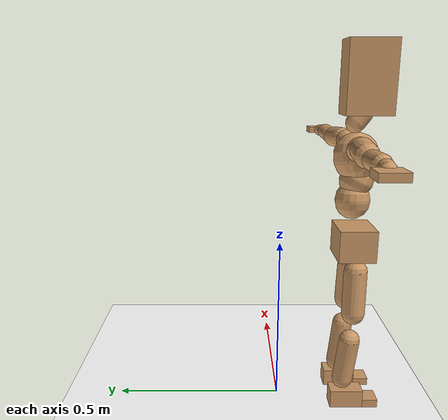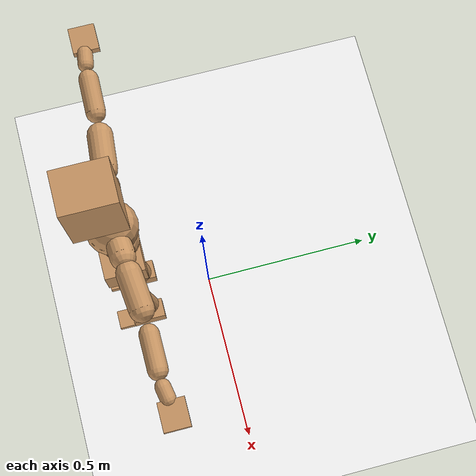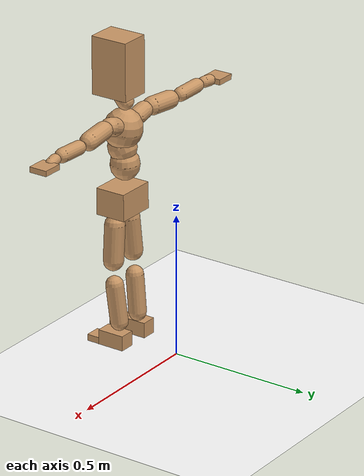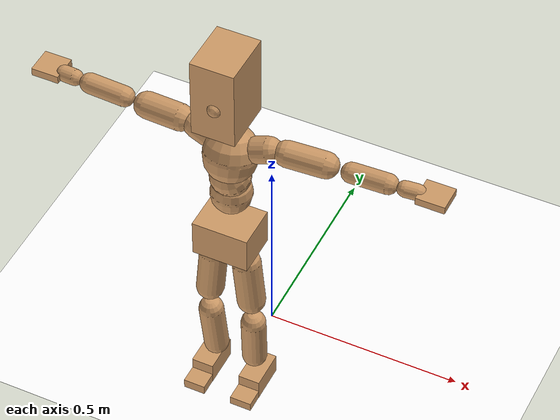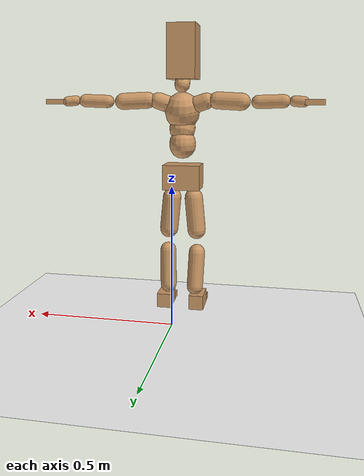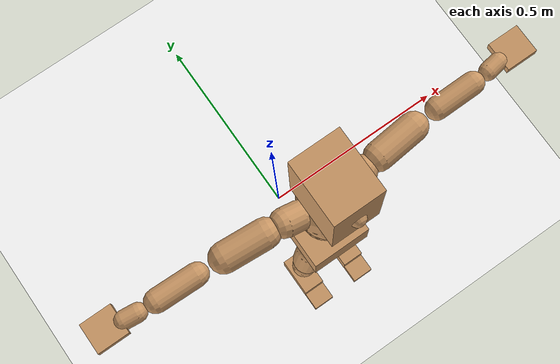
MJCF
<mujoco model="humanoid">
  <option integrator="implicitfast" />

  <visual>
    <global offwidth="1280" offheight="960" />
    <headlight active="1" ambient="0.34 0.34 0.34" diffuse="0.5 0.5 0.5" />
  </visual>

  <default>
    <joint damping="2" stiffness="2" armature="0.01" limited="true" solimplimit="0 .99 .01" />
    <geom condim="1" friction="0.7 0.005 0.0001" solimp=".99 .99 .003" solref="0.015 1" margin="0.001" rgba="0.8 0.6 .4 1" />
    <default class="smplcontact">
      <geom condim="3" friction="1. 0.005 0.0001" solref="0.015 1" solimp="0.98 0.98 0.001" priority="1" />
    </default>
    <default class="stiff_medium">
      <joint stiffness="10" />
    </default>
    <default class="stiff_medium_higher">
      <joint stiffness="50" />
    </default>
    <default class="stiff_high">
      <joint stiffness="100" />
    </default>
  </default>

  <asset>
    <texture type="skybox" builtin="gradient" rgb1="0.99 0.99 0.99" rgb2="0.608 0.828 0.892" width="100" />
    <texture builtin="flat" height="1278" mark="cross" markrgb="1 1 1" name="texgeom" random="0.01" rgb1="0.8 0.6 0.4" rgb2="0.8 0.6 0.4" type="cube" width="127" />
    <texture name="texplane" type="2d" builtin="checker" markrgb="1 1 1" rgb1="0.756 0.772 0.76" rgb2="0.6 0.6 0.6" width="100" height="100" />
    <material name="MatPlane" reflectance="0.5" texture="texplane" texrepeat="1 1" texuniform="true" />
    <material name="geom" texture="texgeom" texuniform="true" />
  </asset>

  <worldbody>
    <light name="tracking_light" pos="0 0 7" dir="0 0 -1" directional="true" cutoff="100" exponent="1" diffuse="1 1 1" specular="0.1 0.1 0.1" mode="trackcom" />
    <camera name="back" pos="0 3 2.4" xyaxes="-1 0 0 0 -1 2" mode="trackcom" />
    <camera name="side" pos="-3 0 2.4" xyaxes="0 -1 0 1 0 2" mode="trackcom" />
    <camera name="front_side" pos="-2.8 -2.8 0.8" xyaxes="0.5 -0.5 0 0.1 0.1 1" mode="trackcom" />
    <geom condim="3" name="floor" pos="0 0 0" rgba="1 1 1 1" size="100 100 .2" type="plane" material="MatPlane" />
    <body name="Pelvis" pos="-0.0018 -0.2233 0.520282" euler="90 0 0">
      <site name="Pelvis" size="0.01" />
      <freejoint name="Pelvis" />
      <geom type="box" pos="-0.0000 -0.0121 -0.0055" size="0.0698564 0.0471809 0.0542384" quat="1.0000 0.0000 0.0000 0.0000" density="3165.830099" name="Pelvis" />
      <body name="L_Hip" pos="0.0385529 -0.0507012 -0.00377208">
        <joint name="L_Hip_x" type="hinge" pos="0 0 0" axis="1 0 0" stiffness="10" range="-160.0 22.92" class="stiff_medium" damping="15" />
        <joint name="L_Hip_y" type="hinge" pos="0 0 0" axis="0 1 0" stiffness="10" range="-70.0 70.0" class="stiff_medium" damping="10" />
        <joint name="L_Hip_z" type="hinge" pos="0 0 0" axis="0 0 1" stiffness="10" range="-28.65 90.0" class="stiff_medium" damping="10" />
        <geom type="capsule" density="2040.816327" fromto="0.00382755 -0.0416038 -0.000499246 0.0151993 -0.166526 -0.00199698" size="0.0349862" name="L_Hip" />
        <body name="L_Knee" pos="0.0190268 -0.20813 -0.00249623">
          <joint name="L_Knee_x" type="hinge" pos="0 0 0" axis="1 0 0" range="-5.16 171.89" damping="8" />
          <joint name="L_Knee_y" type="hinge" pos="0 0 0" axis="0 1 0" range="-4.58 6.88" damping="8" />
          <joint name="L_Knee_z" type="hinge" pos="0 0 0" axis="0 0 1" range="-6.88 4.58" damping="8" />
          <geom type="capsule" density="1234.567901" fromto="-0.00149774 -0.0441555 -0.00482605 -0.00604642 -0.176622 -0.0194151" size="0.0307765" name="L_Knee" />
          <body name="L_Ankle" pos="-0.00754416 -0.220778 -0.0242412">
            <joint name="L_Ankle_x" type="hinge" pos="0 0 0" axis="1 0 0" range="-45.84 45.84" class="stiff_medium" damping="6" />
            <joint name="L_Ankle_y" type="hinge" pos="0 0 0" axis="0 1 0" range="-74.48 22.92" class="stiff_medium" damping="3" />
            <joint name="L_Ankle_z" type="hinge" pos="0 0 0" axis="0 0 1" range="-4.58 4.58" class="stiff_medium" damping="6" />
            <geom type="box" pos="0.0129249 -0.0132578 0.0134242" size="0.027477 0.0263961 0.048355" quat="1.0000 0.0000 0.0000 0.0000" density="449.071558" name="L_Ankle" class="smplcontact" />
            <body name="L_Toe" pos="0.0146446 -0.0309533 0.0661778">
              <joint name="L_Toe_x" type="hinge" pos="0 0 0" axis="1 0 0" range="-91.67 22.92" />
              <joint name="L_Toe_y" type="hinge" pos="0 0 0" axis="0 1 0" range="-4.58 4.58" />
              <joint name="L_Toe_z" type="hinge" pos="0 0 0" axis="0 0 1" range="-4.58 4.58" />
              <geom type="box" pos="-0.00166415 0.00305095 0.013757" size="0.0271926 0.0113776 0.0282165" quat="1.0000 0.0000 0.0000 0.0000" density="423.206892" name="L_Toe" class="smplcontact" />
            </body>
          </body>
        </body>
      </body>
      <body name="R_Hip" pos="-0.0375544 -0.050202 -0.00238529">
        <joint name="R_Hip_x" type="hinge" pos="0 0 0" axis="1 0 0" stiffness="10" range="-160.0 22.92" class="stiff_medium" damping="15" />
        <joint name="R_Hip_y" type="hinge" pos="0 0 0" axis="0 1 0" stiffness="10" range="-70.0 70.0" class="stiff_medium" damping="10" />
        <joint name="R_Hip_z" type="hinge" pos="0 0 0" axis="0 0 1" stiffness="10" range="-90.0 28.65" class="stiff_medium" damping="10" />
        <geom type="capsule" density="2040.816327" fromto="-0.00427133 -0.0424359 -0.000998492 -0.0169744 -0.169799 -0.0039385" size="0.0344742" name="R_Hip" />
        <body name="R_Knee" pos="-0.0212457 -0.212235 -0.00493699">
          <joint name="R_Knee_x" type="hinge" pos="0 0 0" axis="1 0 0" range="-5.16 171.89" damping="8" />
          <joint name="R_Knee_y" type="hinge" pos="0 0 0" axis="0 1 0" range="-6.88 4.58" damping="8" />
          <joint name="R_Knee_z" type="hinge" pos="0 0 0" axis="0 0 1" range="-4.58 6.88" damping="8" />
          <geom type="capsule" density="1234.567901" fromto="0.0017751 -0.044211 -0.0047151 0.00698945 -0.176789 -0.0187495" size="0.0307765" name="R_Knee" />
          <body name="R_Ankle" pos="0.00876454 -0.221 -0.0234646">
            <joint name="R_Ankle_x" type="hinge" pos="0 0 0" axis="1 0 0" range="-45.84 45.84" class="stiff_medium" damping="6" />
            <joint name="R_Ankle_y" type="hinge" pos="0 0 0" axis="0 1 0" range="-22.92 74.48" class="stiff_medium" damping="3" />
            <joint name="R_Ankle_z" type="hinge" pos="0 0 0" axis="0 0 1" range="-4.58 4.58" class="stiff_medium" damping="6" />
            <geom type="box" pos="-0.01176 -0.00965209 0.0142008" size="0.027477 0.0271926 0.0492083" quat="1.0000 0.0000 0.0000 0.0000" density="434.700981" name="R_Ankle" class="smplcontact" />
            <body name="R_Toe" pos="-0.0140898 -0.0266819 0.0683967">
              <joint name="R_Toe_x" type="hinge" pos="0 0 0" axis="1 0 0" range="-91.67 22.92" />
              <joint name="R_Toe_y" type="hinge" pos="0 0 0" axis="0 1 0" range="-4.58 4.58" />
              <joint name="R_Toe_z" type="hinge" pos="0 0 0" axis="0 0 1" range="-4.58 4.58" />
              <geom type="box" pos="0.00232982 0.00249623 0.0125921" size="0.0272494 0.0122879 0.0280459" quat="1.0000 0.0000 0.0000 0.0000" density="407.384095" name="R_Toe" class="smplcontact" />
            </body>
          </body>
        </body>
      </body>
      <body name="Torso" pos="-0.00159301 0.0694552 -0.0170133">
        <joint name="Torso_x" type="hinge" pos="0 0 0" axis="1 0 0" range="-25.78 57.3" class="stiff_medium" damping="15" />
        <joint name="Torso_y" type="hinge" pos="0 0 0" axis="0 1 0" range="-57.3 57.3" class="stiff_high" damping="20" />
        <joint name="Torso_z" type="hinge" pos="0 0 0" axis="0 0 1" range="-34.38 34.38" class="stiff_high" damping="20" />
        <geom type="capsule" density="2040.816327" fromto="0.00159301 0.038742 0.000318602 0.00191161 0.0473443 0.000382322" size="0.0502522" name="Torso" />
        <body name="Spine" pos="0.00350462 0.08615 0.000700925">
          <joint name="Spine_x" type="hinge" pos="0 0 0" axis="1 0 0" stiffness="10" range="-25.78 57.3" class="stiff_medium" damping="15" />
          <joint name="Spine_y" type="hinge" pos="0 0 0" axis="0 1 0" stiffness="10" range="-57.3 57.3" class="stiff_high" damping="8" />
          <joint name="Spine_z" type="hinge" pos="0 0 0" axis="0 0 1" stiffness="20" range="-34.38 34.38" class="stiff_high" damping="12" />
          <geom type="capsule" density="2040.816327" fromto="0.000446043 0.0151655 0.00726413 0.000509763 0.0185426 0.00892086" size="0.0493373" name="Spine" />
          <body name="Chest" pos="0.000955806 0.0337081 0.016185">
            <joint name="Chest_x" type="hinge" pos="0 0 0" axis="1 0 0" stiffness="10" range="-25.78 57.3" class="stiff_medium" damping="15" />
            <joint name="Chest_y" type="hinge" pos="0 0 0" axis="0 1 0" stiffness="10" range="-57.3 57.3" class="stiff_high" damping="8" />
            <joint name="Chest_z" type="hinge" pos="0 0 0" axis="0 0 1" stiffness="20" range="-34.38 34.38" class="stiff_high" damping="12" />
            <geom type="capsule" density="2040.816327" fromto="-0.000573484 0.0434573 -0.0110236 -0.000637204 0.0530791 -0.0135087" size="0.0654781" name="Chest" />
            <body name="Neck" pos="-0.00178417 0.136298 -0.0273361">
              <joint name="Neck_x" type="hinge" pos="0 0 0" axis="1 0 0" range="-28.65 57.3" class="stiff_medium_higher" damping="10" />
              <joint name="Neck_y" type="hinge" pos="0 0 0" axis="0 1 0" range="-40.11 40.11" class="stiff_medium_higher" damping="10" />
              <joint name="Neck_z" type="hinge" pos="0 0 0" axis="0 0 1" range="-40.11 40.11" class="stiff_medium_higher" damping="10" />
              <geom type="capsule" density="1000" fromto="0.000637204 0.00828365 0.0065632 0.00261254 0.0331346 0.0261891" size="0.0284915" name="Neck" />
              <body name="Head" pos="0.00444036 0.0555045 0.0438059">
                <joint name="Head_x" type="hinge" pos="0 0 0" axis="1 0 0" range="-28.65 57.3" class="stiff_medium_higher" damping="2" />
                <joint name="Head_y" type="hinge" pos="0 0 0" axis="0 1 0" range="-40.11 40.11" class="stiff_medium_higher" damping="2" />
                <joint name="Head_z" type="hinge" pos="0 0 0" axis="0 0 1" range="-40.11 40.11" class="stiff_medium_higher" damping="2" />
                <geom type="box" pos="-0.00358645 0.074803 -0.00990543" size="0.0530686 0.101058 0.0665547" quat="1.0000 0.0000 0.0000 0.0000" density="1018.069894" name="Head" />
                <geom type="capsule" name="nose" size="0.0175144 0.0087572" pos="0 0.0597741 0.0426958" quat="1 0 0 0" mass="0" contype="0" conaffinity="0" />
              </body>
            </body>
            <body name="L_Thorax" pos="0.0462926 0.071495 -0.0200327">
              <joint name="L_Thorax_x" type="hinge" pos="0 0 0" axis="1 0 0" range="-10.89 4.58" class="stiff_medium_higher" damping="20" />
              <joint name="L_Thorax_y" type="hinge" pos="0 0 0" axis="0 1 0" range="-28.65 17.19" class="stiff_medium_higher" damping="20" />
              <joint name="L_Thorax_z" type="hinge" pos="0 0 0" axis="0 0 1" range="-31.51 40.11" class="stiff_medium_higher" damping="20" />
              <geom type="capsule" density="1000" fromto="0.0106919 0.00358356 -0.00105744 0.0427678 0.0143342 -0.00417103" size="0.0313887" name="L_Thorax" />
              <body name="L_Shoulder" pos="0.0534597 0.0179178 -0.00522848">
                <joint name="L_Shoulder_x" type="hinge" pos="0 0 0" axis="1 0 0" range="-97.4 97.4" class="stiff_medium" damping="6" />
                <joint name="L_Shoulder_y" type="hinge" pos="0 0 0" axis="0 1 0" range="-108.86 80.21" class="stiff_medium" damping="6" />
                <joint name="L_Shoulder_z" type="hinge" pos="0 0 0" axis="0 0 1" range="-97.4 85.94" class="stiff_medium" damping="6" />
                <geom type="capsule" density="1000" fromto="0.0304897 -0.00152742 -0.00323108 0.122017 -0.00599219 -0.0129243" size="0.0311477" name="L_Shoulder" />
                <body name="L_Elbow" pos="0.152507 -0.00751961 -0.0161554">
                  <joint name="L_Elbow_x" type="hinge" pos="0 0 0" axis="1 0 0" range="-17.19 4.58" damping="5" />
                  <joint name="L_Elbow_y" type="hinge" pos="0 0 0" axis="0 1 0" range="-180.0 17.19" damping="5" />
                  <joint name="L_Elbow_z" type="hinge" pos="0 0 0" axis="0 0 1" range="-100.84 4.58" damping="5" />
                  <geom type="capsule" density="1000" fromto="0.029256 0.00105744 -0.000117494 0.117141 0.00422978 -0.000528722" size="0.0244" name="L_Elbow" />
                  <body name="L_Wrist" pos="0.146397 0.00528722 -0.000704963">
                    <joint name="L_Wrist_x" type="hinge" pos="0 0 0" axis="1 0 0" range="-180.0 22.92" />
                    <joint name="L_Wrist_y" type="hinge" pos="0 0 0" axis="0 1 0" range="-17.19 17.19" />
                    <joint name="L_Wrist_z" type="hinge" pos="0 0 0" axis="0 0 1" range="-22.92 22.92" />
                    <geom type="capsule" density="1000" fromto="0.00986948 -0.000939951 -0.00176241 0.0394779 -0.00381855 -0.00704963" size="0.0191585" name="L_Wrist" class="smplcontact" />
                    <body name="L_Hand" pos="0.0493474 -0.00481725 -0.00875329">
                      <joint name="L_Hand_x" type="hinge" pos="0 0 0" axis="1 0 0" range="-17.19 17.19" />
                      <joint name="L_Hand_y" type="hinge" pos="0 0 0" axis="0 1 0" range="-51.57 51.57" />
                      <joint name="L_Hand_z" type="hinge" pos="0 0 0" axis="0 0 1" range="-91.67 91.67" />
                      <geom type="box" pos="0.0289622 0.000587469 -0.00340732" size="0.0352445 0.00951902 0.0324129" quat="1.0000 0.0000 0.0000 0.0000" density="400.552564" name="L_Hand" class="smplcontact" />
                    </body>
                  </body>
                </body>
              </body>
            </body>
            <body name="R_Thorax" pos="-0.048055 0.0697913 -0.0226763">
              <joint name="R_Thorax_x" type="hinge" pos="0 0 0" axis="1 0 0" range="-10.89 4.58" class="stiff_medium_higher" damping="20" />
              <joint name="R_Thorax_y" type="hinge" pos="0 0 0" axis="0 1 0" range="-17.19 28.65" class="stiff_medium_higher" damping="20" />
              <joint name="R_Thorax_z" type="hinge" pos="0 0 0" axis="0 0 1" range="-40.11 31.51" class="stiff_medium_higher" damping="20" />
              <geom type="capsule" density="1000" fromto="-0.0112794 0.00381855 -0.00105744 -0.0451176 0.0152742 -0.00428853" size="0.0307862" name="R_Thorax" />
              <body name="R_Shoulder" pos="-0.056397 0.0191515 -0.00534597">
                <joint name="R_Shoulder_x" type="hinge" pos="0 0 0" axis="1 0 0" range="-97.4 97.4" class="stiff_medium" damping="6" />
                <joint name="R_Shoulder_y" type="hinge" pos="0 0 0" axis="0 1 0" range="-80.21 108.86" class="stiff_medium" damping="6" />
                <joint name="R_Shoulder_z" type="hinge" pos="0 0 0" axis="0 0 1" range="-85.94 97.4" class="stiff_medium" damping="6" />
                <geom type="capsule" density="1000" fromto="-0.0297847 -0.00158617 -0.00252612 -0.119256 -0.00628592 -0.0100457" size="0.0319911" name="R_Shoulder" />
                <body name="R_Elbow" pos="-0.149041 -0.00781334 -0.0125718">
                  <joint name="R_Elbow_x" type="hinge" pos="0 0 0" axis="1 0 0" range="-17.19 4.58" damping="5" />
                  <joint name="R_Elbow_y" type="hinge" pos="0 0 0" axis="0 1 0" range="-17.19 180.0" damping="5" />
                  <joint name="R_Elbow_z" type="hinge" pos="0 0 0" axis="0 0 1" range="-4.58 100.84" damping="5" />
                  <geom type="capsule" density="1000" fromto="-0.0300197 0.000939951 -0.000646216 -0.119961 0.00364231 -0.00258486" size="0.0245808" name="R_Elbow" />
                  <body name="R_Wrist" pos="-0.149981 0.00458226 -0.00328983">
                    <joint name="R_Wrist_x" type="hinge" pos="0 0 0" axis="1 0 0" range="-180.0 22.92" />
                    <joint name="R_Wrist_y" type="hinge" pos="0 0 0" axis="0 1 0" range="-17.19 17.19" />
                    <joint name="R_Wrist_z" type="hinge" pos="0 0 0" axis="0 0 1" range="-22.92 22.92" />
                    <geom type="capsule" density="1000" fromto="-0.00992823 -0.000704963 -0.00123369 -0.0397717 -0.0028786 -0.00487599" size="0.0196405" name="R_Wrist" class="smplcontact" />
                    <body name="R_Hand" pos="-0.0496999 -0.00358356 -0.00605093">
                      <joint name="R_Hand_x" type="hinge" pos="0 0 0" axis="1 0 0" range="-17.19 17.19" />
                      <joint name="R_Hand_y" type="hinge" pos="0 0 0" axis="0 1 0" range="-51.57 51.57" />
                      <joint name="R_Hand_z" type="hinge" pos="0 0 0" axis="0 0 1" range="-91.67 91.67" />
                      <geom type="box" pos="-0.0271411 -0.000528722 -0.00464101" size="0.0342805 0.0098805 0.0328948" quat="1.0000 0.0000 0.0000 0.0000" density="403.679611" name="R_Hand" class="smplcontact" />
                    </body>
                  </body>
                </body>
              </body>
            </body>
          </body>
        </body>
      </body>
    </body>
  </worldbody>
  <actuator>
    <general name="L_Hip_x" joint="L_Hip_x" biastype="affine" gainprm="287.33006409732246" biasprm="-215.3247604770444 -180 -2.0" ctrllimited="true" ctrlrange="-1 1" forcerange="-360 360" />
    <general name="L_Hip_y" joint="L_Hip_y" biastype="affine" gainprm="219.9114857512855" biasprm="0.0 -180 -2.0" ctrllimited="true" ctrlrange="-1 1" forcerange="-360 360" />
    <general name="L_Hip_z" joint="L_Hip_z" biastype="affine" gainprm="186.3749841742145" biasprm="96.3683546488669 -180 -2.0" ctrllimited="true" ctrlrange="-1 1" forcerange="-360 360" />
    <general name="L_Knee_x" joint="L_Knee_x" biastype="affine" gainprm="278.10948965903646" biasprm="261.8988715665131 -180 -2.0" ctrllimited="true" ctrlrange="-1 1" forcerange="-360 360" />
    <general name="L_Knee_y" joint="L_Knee_y" biastype="affine" gainprm="18.001325905069514" biasprm="3.612831551628262 -180 -2.0" ctrllimited="true" ctrlrange="-1 1" forcerange="-360 360" />
    <general name="L_Knee_z" joint="L_Knee_z" biastype="affine" gainprm="18.001325905069514" biasprm="-3.612831551628262 -180 -2.0" ctrllimited="true" ctrlrange="-1 1" forcerange="-360 360" />
    <general name="L_Ankle_x" joint="L_Ankle_x" biastype="affine" gainprm="72.00530362027807" biasprm="0.0 -90 -2.0" ctrllimited="true" ctrlrange="-1 1" forcerange="-180 180" />
    <general name="L_Ankle_y" joint="L_Ankle_y" biastype="affine" gainprm="76.49778111491148" biasprm="-40.49512930477244 -90 -2.0" ctrllimited="true" ctrlrange="-1 1" forcerange="-180 180" />
    <general name="L_Ankle_z" joint="L_Ankle_z" biastype="affine" gainprm="7.1942471767206255" biasprm="0.0 -90 -2.0" ctrllimited="true" ctrlrange="-1 1" forcerange="-180 180" />
    <general name="L_Toe_x" joint="L_Toe_x" biastype="affine" gainprm="71.99902043497087" biasprm="-43.19689898685965 -72 -0.8" ctrllimited="true" ctrlrange="-1 1" forcerange="-144 144" />
    <general name="L_Toe_y" joint="L_Toe_y" biastype="affine" gainprm="5.755397741376501" biasprm="0.0 -72 -0.8" ctrllimited="true" ctrlrange="-1 1" forcerange="-144 144" />
    <general name="L_Toe_z" joint="L_Toe_z" biastype="affine" gainprm="5.755397741376501" biasprm="0.0 -72 -0.8" ctrllimited="true" ctrlrange="-1 1" forcerange="-144 144" />
    <general name="R_Hip_x" joint="R_Hip_x" biastype="affine" gainprm="287.33006409732246" biasprm="-215.3247604770444 -180 -2.0" ctrllimited="true" ctrlrange="-1 1" forcerange="-360 360" />
    <general name="R_Hip_y" joint="R_Hip_y" biastype="affine" gainprm="219.9114857512855" biasprm="0.0 -180 -2.0" ctrllimited="true" ctrlrange="-1 1" forcerange="-360 360" />
    <general name="R_Hip_z" joint="R_Hip_z" biastype="affine" gainprm="186.3749841742145" biasprm="-96.3683546488669 -180 -2.0" ctrllimited="true" ctrlrange="-1 1" forcerange="-360 360" />
    <general name="R_Knee_x" joint="R_Knee_x" biastype="affine" gainprm="278.10948965903646" biasprm="261.8988715665131 -180 -2.0" ctrllimited="true" ctrlrange="-1 1" forcerange="-360 360" />
    <general name="R_Knee_y" joint="R_Knee_y" biastype="affine" gainprm="18.001325905069514" biasprm="-3.612831551628262 -180 -2.0" ctrllimited="true" ctrlrange="-1 1" forcerange="-360 360" />
    <general name="R_Knee_z" joint="R_Knee_z" biastype="affine" gainprm="18.001325905069514" biasprm="3.612831551628262 -180 -2.0" ctrllimited="true" ctrlrange="-1 1" forcerange="-360 360" />
    <general name="R_Ankle_x" joint="R_Ankle_x" biastype="affine" gainprm="72.00530362027807" biasprm="0.0 -90 -2.0" ctrllimited="true" ctrlrange="-1 1" forcerange="-180 180" />
    <general name="R_Ankle_y" joint="R_Ankle_y" biastype="affine" gainprm="76.49778111491148" biasprm="40.49512930477244 -90 -2.0" ctrllimited="true" ctrlrange="-1 1" forcerange="-180 180" />
    <general name="R_Ankle_z" joint="R_Ankle_z" biastype="affine" gainprm="7.1942471767206255" biasprm="0.0 -90 -2.0" ctrllimited="true" ctrlrange="-1 1" forcerange="-180 180" />
    <general name="R_Toe_x" joint="R_Toe_x" biastype="affine" gainprm="71.99902043497087" biasprm="-43.19689898685965 -72 -0.8" ctrllimited="true" ctrlrange="-1 1" forcerange="-144 144" />
    <general name="R_Toe_y" joint="R_Toe_y" biastype="affine" gainprm="5.755397741376501" biasprm="0.0 -72 -0.8" ctrllimited="true" ctrlrange="-1 1" forcerange="-144 144" />
    <general name="R_Toe_z" joint="R_Toe_z" biastype="affine" gainprm="5.755397741376501" biasprm="0.0 -72 -0.8" ctrllimited="true" ctrlrange="-1 1" forcerange="-144 144" />
    <general name="Torso_x" joint="Torso_x" biastype="affine" gainprm="174.00234510682668" biasprm="66.0153336274335 -240 -4.0" ctrllimited="true" ctrlrange="-1 1" forcerange="-360 360" />
    <general name="Torso_y" joint="Torso_y" biastype="affine" gainprm="240.0176787342602" biasprm="0.0 -240 -4.0" ctrllimited="true" ctrlrange="-1 1" forcerange="-360 360" />
    <general name="Torso_z" joint="Torso_z" biastype="affine" gainprm="144.01060724055614" biasprm="0.0 -240 -4.0" ctrllimited="true" ctrlrange="-1 1" forcerange="-360 360" />
    <general name="Spine_x" joint="Spine_x" biastype="affine" gainprm="174.00234510682668" biasprm="66.0153336274335 -240 -4.0" ctrllimited="true" ctrlrange="-1 1" forcerange="-360 360" />
    <general name="Spine_y" joint="Spine_y" biastype="affine" gainprm="240.0176787342602" biasprm="0.0 -240 -4.0" ctrllimited="true" ctrlrange="-1 1" forcerange="-360 360" />
    <general name="Spine_z" joint="Spine_z" biastype="affine" gainprm="144.01060724055614" biasprm="0.0 -240 -4.0" ctrllimited="true" ctrlrange="-1 1" forcerange="-360 360" />
    <general name="Chest_x" joint="Chest_x" biastype="affine" gainprm="174.00234510682668" biasprm="66.0153336274335 -240 -4.0" ctrllimited="true" ctrlrange="-1 1" forcerange="-360 360" />
    <general name="Chest_y" joint="Chest_y" biastype="affine" gainprm="240.0176787342602" biasprm="0.0 -240 -4.0" ctrllimited="true" ctrlrange="-1 1" forcerange="-360 360" />
    <general name="Chest_z" joint="Chest_z" biastype="affine" gainprm="144.01060724055614" biasprm="0.0 -240 -4.0" ctrllimited="true" ctrlrange="-1 1" forcerange="-360 360" />
    <general name="Neck_x" joint="Neck_x" biastype="affine" gainprm="27.00198885760427" biasprm="9.000662952534757 -36 -0.8" ctrllimited="true" ctrlrange="-1 1" forcerange="-72 72" />
    <general name="Neck_y" joint="Neck_y" biastype="affine" gainprm="25.20185626709732" biasprm="0.0 -36 -0.8" ctrllimited="true" ctrlrange="-1 1" forcerange="-72 72" />
    <general name="Neck_z" joint="Neck_z" biastype="affine" gainprm="25.20185626709732" biasprm="0.0 -36 -0.8" ctrllimited="true" ctrlrange="-1 1" forcerange="-72 72" />
    <general name="Head_x" joint="Head_x" biastype="affine" gainprm="18.001325905069514" biasprm="6.000441968356505 -24 -0.8" ctrllimited="true" ctrlrange="-1 1" forcerange="-48 48" />
    <general name="Head_y" joint="Head_y" biastype="affine" gainprm="16.801237511398213" biasprm="0.0 -24 -0.8" ctrllimited="true" ctrlrange="-1 1" forcerange="-48 48" />
    <general name="Head_z" joint="Head_z" biastype="affine" gainprm="16.801237511398213" biasprm="0.0 -24 -0.8" ctrllimited="true" ctrlrange="-1 1" forcerange="-48 48" />
    <general name="L_Thorax_x" joint="L_Thorax_x" biastype="affine" gainprm="16.200146117011364" biasprm="-6.6078165480505335 -120 -1.6" ctrllimited="true" ctrlrange="-1 1" forcerange="-240 240" />
    <general name="L_Thorax_y" joint="L_Thorax_y" biastype="affine" gainprm="48.00353574685204" biasprm="-12.00088393671301 -120 -1.6" ctrllimited="true" ctrlrange="-1 1" forcerange="-240 240" />
    <general name="L_Thorax_z" joint="L_Thorax_z" biastype="affine" gainprm="75.00028861670033" biasprm="9.00589894029074 -120 -1.6" ctrllimited="true" ctrlrange="-1 1" forcerange="-240 240" />
    <general name="L_Shoulder_x" joint="L_Shoulder_x" biastype="affine" gainprm="81.5976331892389" biasprm="0.0 -48 -1.6" ctrllimited="true" ctrlrange="-1 1" forcerange="-96 96" />
    <general name="L_Shoulder_y" joint="L_Shoulder_y" biastype="affine" gainprm="79.19745640189629" biasprm="-12.00088393671301 -48 -1.6" ctrllimited="true" ctrlrange="-1 1" forcerange="-96 96" />
    <general name="L_Shoulder_z" joint="L_Shoulder_z" biastype="affine" gainprm="76.79727961455369" biasprm="-4.800353574685214 -48 -1.6" ctrllimited="true" ctrlrange="-1 1" forcerange="-96 96" />
    <general name="L_Elbow_x" joint="L_Elbow_x" biastype="affine" gainprm="13.67849441372996" biasprm="-7.923096672353461 -72 -0.8" ctrllimited="true" ctrlrange="-1 1" forcerange="-144 144" />
    <general name="L_Elbow_y" joint="L_Elbow_y" biastype="affine" gainprm="123.89813107227425" biasprm="-102.29653998619085 -72 -0.8" ctrllimited="true" ctrlrange="-1 1" forcerange="-144 144" />
    <general name="L_Elbow_z" joint="L_Elbow_z" biastype="affine" gainprm="66.23733950828719" biasprm="-60.4819417669107 -72 -0.8" ctrllimited="true" ctrlrange="-1 1" forcerange="-144 144" />
    <general name="L_Wrist_x" joint="L_Wrist_x" biastype="affine" gainprm="21.24973270888136" biasprm="-16.449379134196157 -12 -0.8" ctrllimited="true" ctrlrange="-1 1" forcerange="-24 24" />
    <general name="L_Wrist_y" joint="L_Wrist_y" biastype="affine" gainprm="3.6002651810139037" biasprm="0.0 -12 -0.8" ctrllimited="true" ctrlrange="-1 1" forcerange="-24 24" />
    <general name="L_Wrist_z" joint="L_Wrist_z" biastype="affine" gainprm="4.800353574685205" biasprm="0.0 -12 -0.8" ctrllimited="true" ctrlrange="-1 1" forcerange="-24 24" />
    <general name="L_Hand_x" joint="L_Hand_x" biastype="affine" gainprm="3.6002651810139037" biasprm="0.0 -12 -0.8" ctrllimited="true" ctrlrange="-1 1" forcerange="-24 24" />
    <general name="L_Hand_y" joint="L_Hand_y" biastype="affine" gainprm="10.800795543041708" biasprm="0.0 -12 -0.8" ctrllimited="true" ctrlrange="-1 1" forcerange="-24 24" />
    <general name="L_Hand_z" joint="L_Hand_z" biastype="affine" gainprm="19.199319903638422" biasprm="0.0 -12 -0.8" ctrllimited="true" ctrlrange="-1 1" forcerange="-24 24" />
    <general name="R_Thorax_x" joint="R_Thorax_x" biastype="affine" gainprm="16.200146117011364" biasprm="-6.6078165480505335 -120 -1.6" ctrllimited="true" ctrlrange="-1 1" forcerange="-240 240" />
    <general name="R_Thorax_y" joint="R_Thorax_y" biastype="affine" gainprm="48.00353574685204" biasprm="12.000883936713002 -120 -1.6" ctrllimited="true" ctrlrange="-1 1" forcerange="-240 240" />
    <general name="R_Thorax_z" joint="R_Thorax_z" biastype="affine" gainprm="75.00028861670033" biasprm="-9.00589894029074 -120 -1.6" ctrllimited="true" ctrlrange="-1 1" forcerange="-240 240" />
    <general name="R_Shoulder_x" joint="R_Shoulder_x" biastype="affine" gainprm="81.5976331892389" biasprm="0.0 -48 -1.6" ctrllimited="true" ctrlrange="-1 1" forcerange="-96 96" />
    <general name="R_Shoulder_y" joint="R_Shoulder_y" biastype="affine" gainprm="79.19745640189629" biasprm="12.00088393671301 -48 -1.6" ctrllimited="true" ctrlrange="-1 1" forcerange="-96 96" />
    <general name="R_Shoulder_z" joint="R_Shoulder_z" biastype="affine" gainprm="76.79727961455369" biasprm="4.800353574685204 -48 -1.6" ctrllimited="true" ctrlrange="-1 1" forcerange="-96 96" />
    <general name="R_Elbow_x" joint="R_Elbow_x" biastype="affine" gainprm="13.67849441372996" biasprm="-7.923096672353461 -72 -0.8" ctrllimited="true" ctrlrange="-1 1" forcerange="-144 144" />
    <general name="R_Elbow_y" joint="R_Elbow_y" biastype="affine" gainprm="123.89813107227425" biasprm="102.29653998619085 -72 -0.8" ctrllimited="true" ctrlrange="-1 1" forcerange="-144 144" />
    <general name="R_Elbow_z" joint="R_Elbow_z" biastype="affine" gainprm="66.23733950828719" biasprm="60.481941766910694 -72 -0.8" ctrllimited="true" ctrlrange="-1 1" forcerange="-144 144" />
    <general name="R_Wrist_x" joint="R_Wrist_x" biastype="affine" gainprm="21.24973270888136" biasprm="-16.449379134196157 -12 -0.8" ctrllimited="true" ctrlrange="-1 1" forcerange="-24 24" />
    <general name="R_Wrist_y" joint="R_Wrist_y" biastype="affine" gainprm="3.6002651810139037" biasprm="0.0 -12 -0.8" ctrllimited="true" ctrlrange="-1 1" forcerange="-24 24" />
    <general name="R_Wrist_z" joint="R_Wrist_z" biastype="affine" gainprm="4.800353574685205" biasprm="0.0 -12 -0.8" ctrllimited="true" ctrlrange="-1 1" forcerange="-24 24" />
    <general name="R_Hand_x" joint="R_Hand_x" biastype="affine" gainprm="3.6002651810139037" biasprm="0.0 -12 -0.8" ctrllimited="true" ctrlrange="-1 1" forcerange="-24 24" />
    <general name="R_Hand_y" joint="R_Hand_y" biastype="affine" gainprm="10.800795543041708" biasprm="0.0 -12 -0.8" ctrllimited="true" ctrlrange="-1 1" forcerange="-24 24" />
    <general name="R_Hand_z" joint="R_Hand_z" biastype="affine" gainprm="19.199319903638422" biasprm="0.0 -12 -0.8" ctrllimited="true" ctrlrange="-1 1" forcerange="-24 24" />
  </actuator>
  <contact>
    <exclude body1="Torso" body2="Chest" />
    <exclude body1="Head" body2="Chest" />
    <exclude body1="R_Knee" body2="R_Toe" />
    <exclude body1="R_Knee" body2="L_Ankle" />
    <exclude body1="R_Knee" body2="L_Toe" />
    <exclude body1="L_Knee" body2="L_Toe" />
    <exclude body1="L_Knee" body2="R_Ankle" />
    <exclude body1="L_Knee" body2="R_Toe" />
    <exclude body1="L_Shoulder" body2="Chest" />
    <exclude body1="R_Shoulder" body2="Chest" />
  </contact>
  <sensor>
    <framelinvel name="sensor_Pelvis_framelinvel" objtype="xbody" objname="Pelvis" />
    <framelinvel name="sensor_L_Hip_framelinvel" objtype="xbody" objname="L_Hip" />
    <framelinvel name="sensor_L_Knee_framelinvel" objtype="xbody" objname="L_Knee" />
    <framelinvel name="sensor_L_Ankle_framelinvel" objtype="xbody" objname="L_Ankle" />
    <framelinvel name="sensor_L_Toe_framelinvel" objtype="xbody" objname="L_Toe" />
    <framelinvel name="sensor_R_Hip_framelinvel" objtype="xbody" objname="R_Hip" />
    <framelinvel name="sensor_R_Knee_framelinvel" objtype="xbody" objname="R_Knee" />
    <framelinvel name="sensor_R_Ankle_framelinvel" objtype="xbody" objname="R_Ankle" />
    <framelinvel name="sensor_R_Toe_framelinvel" objtype="xbody" objname="R_Toe" />
    <framelinvel name="sensor_Torso_framelinvel" objtype="xbody" objname="Torso" />
    <framelinvel name="sensor_Spine_framelinvel" objtype="xbody" objname="Spine" />
    <framelinvel name="sensor_Chest_framelinvel" objtype="xbody" objname="Chest" />
    <framelinvel name="sensor_Neck_framelinvel" objtype="xbody" objname="Neck" />
    <framelinvel name="sensor_Head_framelinvel" objtype="xbody" objname="Head" />
    <framelinvel name="sensor_L_Thorax_framelinvel" objtype="xbody" objname="L_Thorax" />
    <framelinvel name="sensor_L_Shoulder_framelinvel" objtype="xbody" objname="L_Shoulder" />
    <framelinvel name="sensor_L_Elbow_framelinvel" objtype="xbody" objname="L_Elbow" />
    <framelinvel name="sensor_L_Wrist_framelinvel" objtype="xbody" objname="L_Wrist" />
    <framelinvel name="sensor_L_Hand_framelinvel" objtype="xbody" objname="L_Hand" />
    <framelinvel name="sensor_R_Thorax_framelinvel" objtype="xbody" objname="R_Thorax" />
    <framelinvel name="sensor_R_Shoulder_framelinvel" objtype="xbody" objname="R_Shoulder" />
    <framelinvel name="sensor_R_Elbow_framelinvel" objtype="xbody" objname="R_Elbow" />
    <framelinvel name="sensor_R_Wrist_framelinvel" objtype="xbody" objname="R_Wrist" />
    <framelinvel name="sensor_R_Hand_framelinvel" objtype="xbody" objname="R_Hand" />
    <frameangvel name="sensor_Pelvis_frameangvel" objtype="xbody" objname="Pelvis" />
    <frameangvel name="sensor_L_Hip_frameangvel" objtype="xbody" objname="L_Hip" />
    <frameangvel name="sensor_L_Knee_frameangvel" objtype="xbody" objname="L_Knee" />
    <frameangvel name="sensor_L_Ankle_frameangvel" objtype="xbody" objname="L_Ankle" />
    <frameangvel name="sensor_L_Toe_frameangvel" objtype="xbody" objname="L_Toe" />
    <frameangvel name="sensor_R_Hip_frameangvel" objtype="xbody" objname="R_Hip" />
    <frameangvel name="sensor_R_Knee_frameangvel" objtype="xbody" objname="R_Knee" />
    <frameangvel name="sensor_R_Ankle_frameangvel" objtype="xbody" objname="R_Ankle" />
    <frameangvel name="sensor_R_Toe_frameangvel" objtype="xbody" objname="R_Toe" />
    <frameangvel name="sensor_Torso_frameangvel" objtype="xbody" objname="Torso" />
    <frameangvel name="sensor_Spine_frameangvel" objtype="xbody" objname="Spine" />
    <frameangvel name="sensor_Chest_frameangvel" objtype="xbody" objname="Chest" />
    <frameangvel name="sensor_Neck_frameangvel" objtype="xbody" objname="Neck" />
    <frameangvel name="sensor_Head_frameangvel" objtype="xbody" objname="Head" />
    <frameangvel name="sensor_L_Thorax_frameangvel" objtype="xbody" objname="L_Thorax" />
    <frameangvel name="sensor_L_Shoulder_frameangvel" objtype="xbody" objname="L_Shoulder" />
    <frameangvel name="sensor_L_Elbow_frameangvel" objtype="xbody" objname="L_Elbow" />
    <frameangvel name="sensor_L_Wrist_frameangvel" objtype="xbody" objname="L_Wrist" />
    <frameangvel name="sensor_L_Hand_frameangvel" objtype="xbody" objname="L_Hand" />
    <frameangvel name="sensor_R_Thorax_frameangvel" objtype="xbody" objname="R_Thorax" />
    <frameangvel name="sensor_R_Shoulder_frameangvel" objtype="xbody" objname="R_Shoulder" />
    <frameangvel name="sensor_R_Elbow_frameangvel" objtype="xbody" objname="R_Elbow" />
    <frameangvel name="sensor_R_Wrist_frameangvel" objtype="xbody" objname="R_Wrist" />
    <frameangvel name="sensor_R_Hand_frameangvel" objtype="xbody" objname="R_Hand" />
    <subtreelinvel name="Chest_subtreelinvel" body="Chest" />
    <gyro name="Pelvis_gyro" site="Pelvis" />
  </sensor>
</mujoco>
